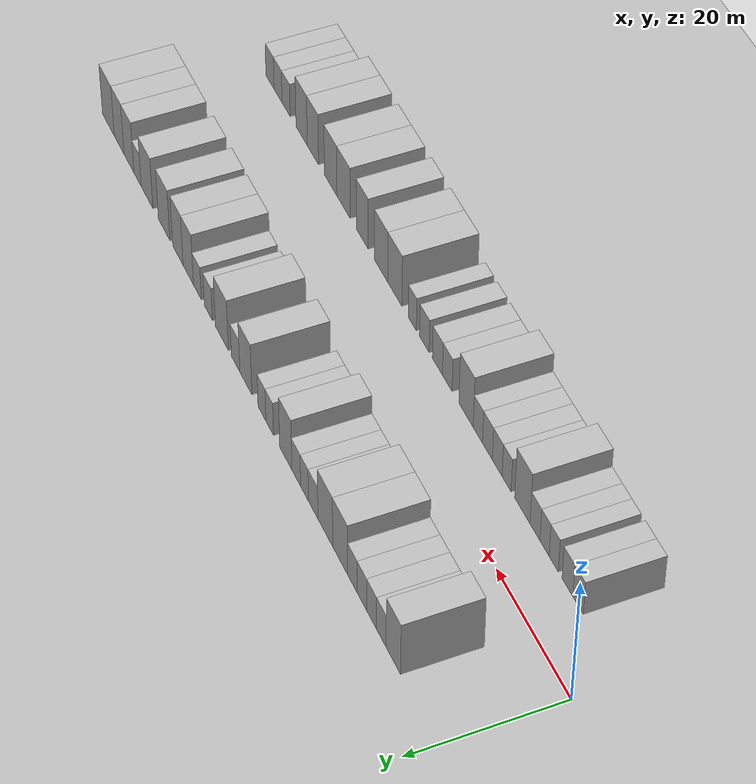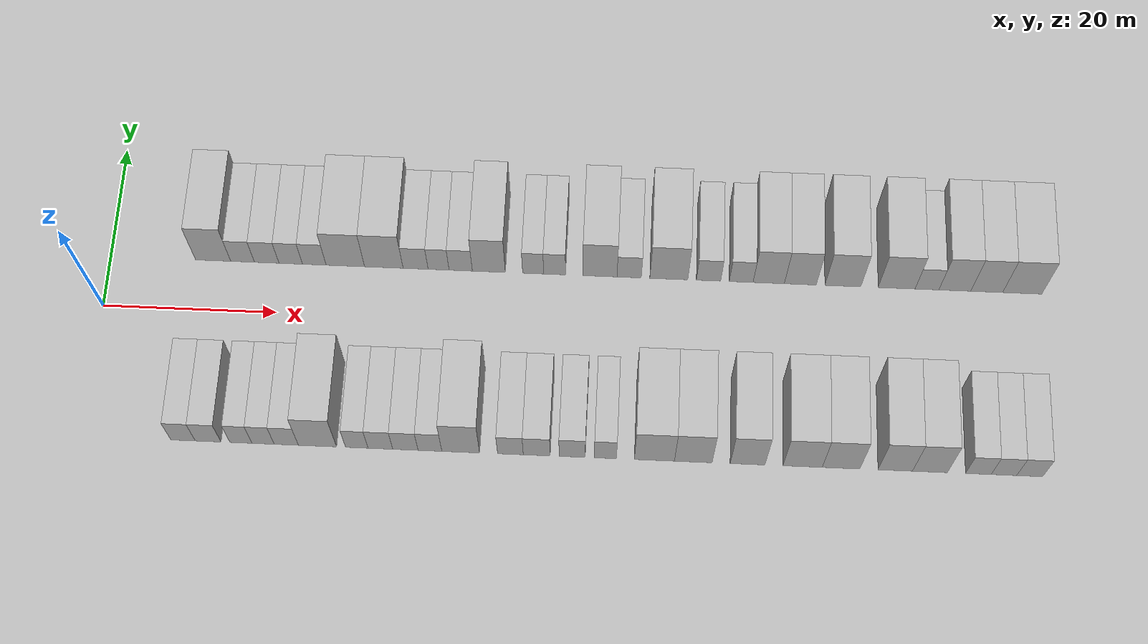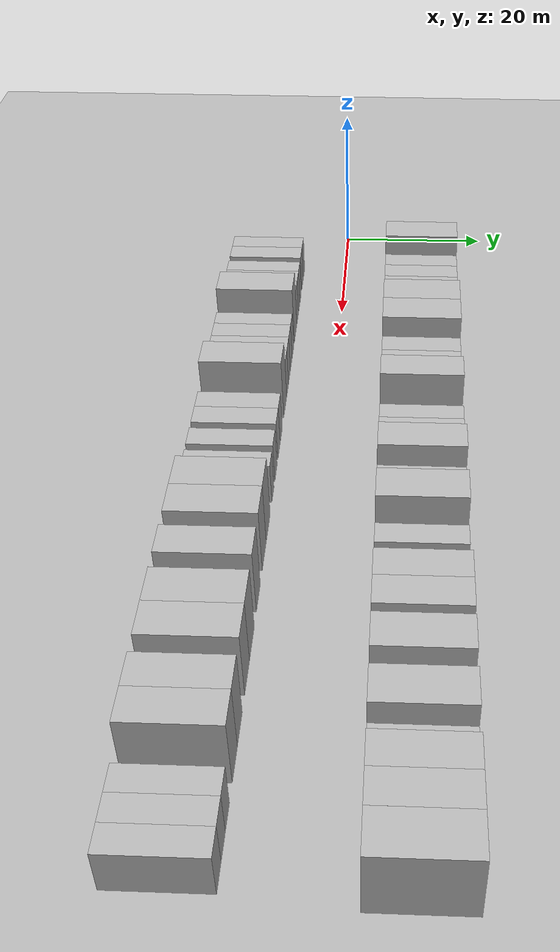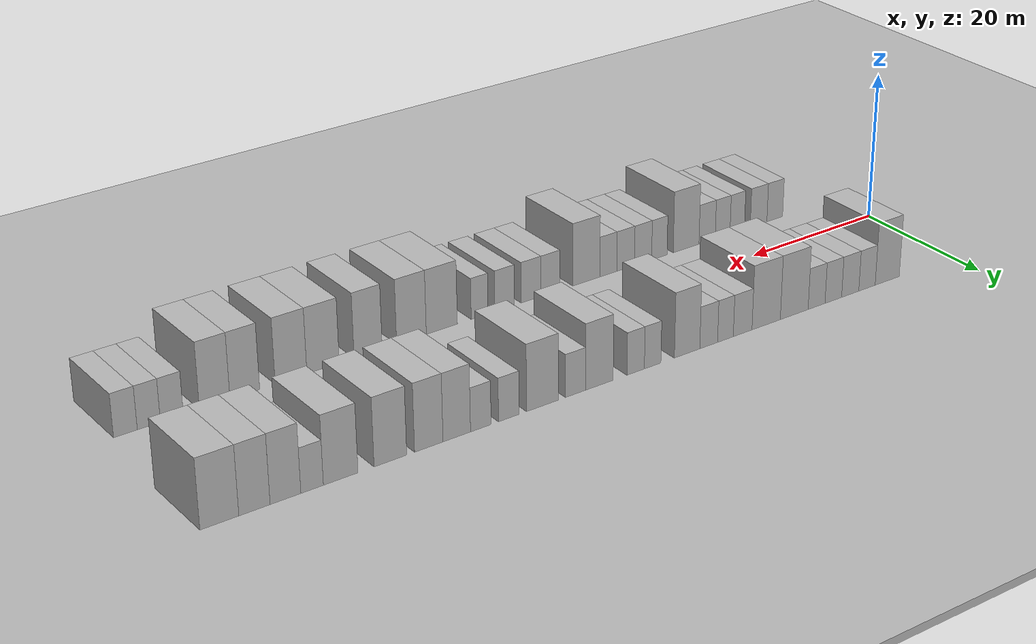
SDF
<sdf version="1.6">
 <world name="default">
  <include><name>ground_plane_1</name><uri>model://HANNAS_ground_plane</uri></include>
  <include>
   <name>ground_plane_2</name>
   <uri>model://HANNAS_ground_plane</uri>
   <pose>100 0 0  0 0 0</pose>
  </include>
  <model name="building_1">
   <static>1</static>
   <pose>12.0503 11.0000 0 0.000000 0.000000 1.570796</pose>
   <link name="link">
    <pose>0 0 4.50 0 0 0</pose>
    <collision name="collision"><geometry><box><size>10.0000 4.1006 9.0000</size></box></geometry></collision>
    <visual name="visual">
     <cast_shadows>0</cast_shadows>
     <geometry><box><size>10.0000 4.1006 9.0000</size></box></geometry>
     <material>
      <script>
       <uri>model://HANNAS_wall/materials/scripts</uri>
       <uri>model://HANNAS_wall/materials/textures</uri>
       <name>vrc/HANNAS_wall</name>
      </script>
     </material>
    </visual>
   </link>
  </model>
  <model name="building_2">
   <static>1</static>
   <pose>15.4799 11.0000 0 0.000000 0.000000 1.570796</pose>
   <link name="link">
    <pose>0 0 3.00 0 0 0</pose>
    <collision name="collision"><geometry><box><size>10.0000 2.7587 6.0000</size></box></geometry></collision>
    <visual name="visual">
     <cast_shadows>0</cast_shadows>
     <geometry><box><size>10.0000 2.7587 6.0000</size></box></geometry>
     <material>
      <script>
       <uri>model://HANNAS_wall/materials/scripts</uri>
       <uri>model://HANNAS_wall/materials/textures</uri>
       <name>vrc/HANNAS_wall</name>
      </script>
     </material>
    </visual>
   </link>
  </model>
  <model name="building_3">
   <static>1</static>
   <pose>18.2870 11.0000 0 0.000000 0.000000 1.570796</pose>
   <link name="link">
    <pose>0 0 3.00 0 0 0</pose>
    <collision name="collision"><geometry><box><size>10.0000 2.8556 6.0000</size></box></geometry></collision>
    <visual name="visual">
     <cast_shadows>0</cast_shadows>
     <geometry><box><size>10.0000 2.8556 6.0000</size></box></geometry>
     <material>
      <script>
       <uri>model://HANNAS_wall/materials/scripts</uri>
       <uri>model://HANNAS_wall/materials/textures</uri>
       <name>vrc/HANNAS_wall</name>
      </script>
     </material>
    </visual>
   </link>
  </model>
  <model name="building_4">
   <static>1</static>
   <pose>21.0823 11.0000 0 0.000000 0.000000 1.570796</pose>
   <link name="link">
    <pose>0 0 3.00 0 0 0</pose>
    <collision name="collision"><geometry><box><size>10.0000 2.7349 6.0000</size></box></geometry></collision>
    <visual name="visual">
     <cast_shadows>0</cast_shadows>
     <geometry><box><size>10.0000 2.7349 6.0000</size></box></geometry>
     <material>
      <script>
       <uri>model://HANNAS_wall/materials/scripts</uri>
       <uri>model://HANNAS_wall/materials/textures</uri>
       <name>vrc/HANNAS_wall</name>
      </script>
     </material>
    </visual>
   </link>
  </model>
  <model name="building_5">
   <static>1</static>
   <pose>23.8265 11.0000 0 0.000000 0.000000 1.570796</pose>
   <link name="link">
    <pose>0 0 3.00 0 0 0</pose>
    <collision name="collision"><geometry><box><size>10.0000 2.7537 6.0000</size></box></geometry></collision>
    <visual name="visual">
     <cast_shadows>0</cast_shadows>
     <geometry><box><size>10.0000 2.7537 6.0000</size></box></geometry>
     <material>
      <script>
       <uri>model://HANNAS_wall/materials/scripts</uri>
       <uri>model://HANNAS_wall/materials/textures</uri>
       <name>vrc/HANNAS_wall</name>
      </script>
     </material>
    </visual>
   </link>
  </model>
  <model name="building_6">
   <static>1</static>
   <pose>27.4386 11.0000 0 0.000000 0.000000 1.570796</pose>
   <link name="link">
    <pose>0 0 4.50 0 0 0</pose>
    <collision name="collision"><geometry><box><size>10.0000 4.4705 9.0000</size></box></geometry></collision>
    <visual name="visual">
     <cast_shadows>0</cast_shadows>
     <geometry><box><size>10.0000 4.4705 9.0000</size></box></geometry>
     <material>
      <script>
       <uri>model://HANNAS_wall/materials/scripts</uri>
       <uri>model://HANNAS_wall/materials/textures</uri>
       <name>vrc/HANNAS_wall</name>
      </script>
     </material>
    </visual>
   </link>
  </model>
  <model name="building_7">
   <static>1</static>
   <pose>31.9097 11.0000 0 0.000000 0.000000 1.570796</pose>
   <link name="link">
    <pose>0 0 4.50 0 0 0</pose>
    <collision name="collision"><geometry><box><size>10.0000 4.4717 9.0000</size></box></geometry></collision>
    <visual name="visual">
     <cast_shadows>0</cast_shadows>
     <geometry><box><size>10.0000 4.4717 9.0000</size></box></geometry>
     <material>
      <script>
       <uri>model://HANNAS_wall/materials/scripts</uri>
       <uri>model://HANNAS_wall/materials/textures</uri>
       <name>vrc/HANNAS_wall</name>
      </script>
     </material>
    </visual>
   </link>
  </model>
  <model name="building_8">
   <static>1</static>
   <pose>35.5978 11.0000 0 0.000000 0.000000 1.570796</pose>
   <link name="link">
    <pose>0 0 3.00 0 0 0</pose>
    <collision name="collision"><geometry><box><size>10.0000 2.9044 6.0000</size></box></geometry></collision>
    <visual name="visual">
     <cast_shadows>0</cast_shadows>
     <geometry><box><size>10.0000 2.9044 6.0000</size></box></geometry>
     <material>
      <script>
       <uri>model://HANNAS_wall/materials/scripts</uri>
       <uri>model://HANNAS_wall/materials/textures</uri>
       <name>vrc/HANNAS_wall</name>
      </script>
     </material>
    </visual>
   </link>
  </model>
  <model name="building_9">
   <static>1</static>
   <pose>38.2642 11.0000 0 0.000000 0.000000 1.570796</pose>
   <link name="link">
    <pose>0 0 3.00 0 0 0</pose>
    <collision name="collision"><geometry><box><size>10.0000 2.4285 6.0000</size></box></geometry></collision>
    <visual name="visual">
     <cast_shadows>0</cast_shadows>
     <geometry><box><size>10.0000 2.4285 6.0000</size></box></geometry>
     <material>
      <script>
       <uri>model://HANNAS_wall/materials/scripts</uri>
       <uri>model://HANNAS_wall/materials/textures</uri>
       <name>vrc/HANNAS_wall</name>
      </script>
     </material>
    </visual>
   </link>
  </model>
  <model name="building_10">
   <static>1</static>
   <pose>40.8345 11.0000 0 0.000000 0.000000 1.570796</pose>
   <link name="link">
    <pose>0 0 3.00 0 0 0</pose>
    <collision name="collision"><geometry><box><size>10.0000 2.7121 6.0000</size></box></geometry></collision>
    <visual name="visual">
     <cast_shadows>0</cast_shadows>
     <geometry><box><size>10.0000 2.7121 6.0000</size></box></geometry>
     <material>
      <script>
       <uri>model://HANNAS_wall/materials/scripts</uri>
       <uri>model://HANNAS_wall/materials/textures</uri>
       <name>vrc/HANNAS_wall</name>
      </script>
     </material>
    </visual>
   </link>
  </model>
  <model name="building_11">
   <static>1</static>
   <pose>44.0996 11.0000 0 0.000000 0.000000 1.570796</pose>
   <link name="link">
    <pose>0 0 4.50 0 0 0</pose>
    <collision name="collision"><geometry><box><size>10.0000 3.8181 9.0000</size></box></geometry></collision>
    <visual name="visual">
     <cast_shadows>0</cast_shadows>
     <geometry><box><size>10.0000 3.8181 9.0000</size></box></geometry>
     <material>
      <script>
       <uri>model://HANNAS_wall/materials/scripts</uri>
       <uri>model://HANNAS_wall/materials/textures</uri>
       <name>vrc/HANNAS_wall</name>
      </script>
     </material>
    </visual>
   </link>
  </model>
  <model name="building_12">
   <static>1</static>
   <pose>49.2258 11.0000 0 0.000000 0.000000 1.570796</pose>
   <link name="link">
    <pose>0 0 3.00 0 0 0</pose>
    <collision name="collision"><geometry><box><size>10.0000 2.4343 6.0000</size></box></geometry></collision>
    <visual name="visual">
     <cast_shadows>0</cast_shadows>
     <geometry><box><size>10.0000 2.4343 6.0000</size></box></geometry>
     <material>
      <script>
       <uri>model://HANNAS_wall/materials/scripts</uri>
       <uri>model://HANNAS_wall/materials/textures</uri>
       <name>vrc/HANNAS_wall</name>
      </script>
     </material>
    </visual>
   </link>
  </model>
  <model name="building_13">
   <static>1</static>
   <pose>51.7094 11.0000 0 0.000000 0.000000 1.570796</pose>
   <link name="link">
    <pose>0 0 3.00 0 0 0</pose>
    <collision name="collision"><geometry><box><size>10.0000 2.5329 6.0000</size></box></geometry></collision>
    <visual name="visual">
     <cast_shadows>0</cast_shadows>
     <geometry><box><size>10.0000 2.5329 6.0000</size></box></geometry>
     <material>
      <script>
       <uri>model://HANNAS_wall/materials/scripts</uri>
       <uri>model://HANNAS_wall/materials/textures</uri>
       <name>vrc/HANNAS_wall</name>
      </script>
     </material>
    </visual>
   </link>
  </model>
  <model name="building_14">
   <static>1</static>
   <pose>56.9545 11.0000 0 0.000000 0.000000 1.570796</pose>
   <link name="link">
    <pose>0 0 4.50 0 0 0</pose>
    <collision name="collision"><geometry><box><size>10.0000 3.9573 9.0000</size></box></geometry></collision>
    <visual name="visual">
     <cast_shadows>0</cast_shadows>
     <geometry><box><size>10.0000 3.9573 9.0000</size></box></geometry>
     <material>
      <script>
       <uri>model://HANNAS_wall/materials/scripts</uri>
       <uri>model://HANNAS_wall/materials/textures</uri>
       <name>vrc/HANNAS_wall</name>
      </script>
     </material>
    </visual>
   </link>
  </model>
  <model name="building_15">
   <static>1</static>
   <pose>60.3338 11.0000 0 0.000000 0.000000 1.570796</pose>
   <link name="link">
    <pose>0 0 3.00 0 0 0</pose>
    <collision name="collision"><geometry><box><size>10.0000 2.8012 6.0000</size></box></geometry></collision>
    <visual name="visual">
     <cast_shadows>0</cast_shadows>
     <geometry><box><size>10.0000 2.8012 6.0000</size></box></geometry>
     <material>
      <script>
       <uri>model://HANNAS_wall/materials/scripts</uri>
       <uri>model://HANNAS_wall/materials/textures</uri>
       <name>vrc/HANNAS_wall</name>
      </script>
     </material>
    </visual>
   </link>
  </model>
  <model name="building_16">
   <static>1</static>
   <pose>64.9238 11.0000 0 0.000000 0.000000 1.570796</pose>
   <link name="link">
    <pose>0 0 4.50 0 0 0</pose>
    <collision name="collision"><geometry><box><size>10.0000 4.3788 9.0000</size></box></geometry></collision>
    <visual name="visual">
     <cast_shadows>0</cast_shadows>
     <geometry><box><size>10.0000 4.3788 9.0000</size></box></geometry>
     <material>
      <script>
       <uri>model://HANNAS_wall/materials/scripts</uri>
       <uri>model://HANNAS_wall/materials/textures</uri>
       <name>vrc/HANNAS_wall</name>
      </script>
     </material>
    </visual>
   </link>
  </model>
  <model name="building_17">
   <static>1</static>
   <pose>69.5116 11.0000 0 0.000000 0.000000 1.570796</pose>
   <link name="link">
    <pose>0 0 3.00 0 0 0</pose>
    <collision name="collision"><geometry><box><size>10.0000 2.7969 6.0000</size></box></geometry></collision>
    <visual name="visual">
     <cast_shadows>0</cast_shadows>
     <geometry><box><size>10.0000 2.7969 6.0000</size></box></geometry>
     <material>
      <script>
       <uri>model://HANNAS_wall/materials/scripts</uri>
       <uri>model://HANNAS_wall/materials/textures</uri>
       <name>vrc/HANNAS_wall</name>
      </script>
     </material>
    </visual>
   </link>
  </model>
  <model name="building_18">
   <static>1</static>
   <pose>73.2801 11.0000 0 0.000000 0.000000 1.570796</pose>
   <link name="link">
    <pose>0 0 3.00 0 0 0</pose>
    <collision name="collision"><geometry><box><size>10.0000 2.7400 6.0000</size></box></geometry></collision>
    <visual name="visual">
     <cast_shadows>0</cast_shadows>
     <geometry><box><size>10.0000 2.7400 6.0000</size></box></geometry>
     <material>
      <script>
       <uri>model://HANNAS_wall/materials/scripts</uri>
       <uri>model://HANNAS_wall/materials/textures</uri>
       <name>vrc/HANNAS_wall</name>
      </script>
     </material>
    </visual>
   </link>
  </model>
  <model name="building_19">
   <static>1</static>
   <pose>76.4537 11.0000 0 0.000000 0.000000 1.570796</pose>
   <link name="link">
    <pose>0 0 4.50 0 0 0</pose>
    <collision name="collision"><geometry><box><size>10.0000 3.6072 9.0000</size></box></geometry></collision>
    <visual name="visual">
     <cast_shadows>0</cast_shadows>
     <geometry><box><size>10.0000 3.6072 9.0000</size></box></geometry>
     <material>
      <script>
       <uri>model://HANNAS_wall/materials/scripts</uri>
       <uri>model://HANNAS_wall/materials/textures</uri>
       <name>vrc/HANNAS_wall</name>
      </script>
     </material>
    </visual>
   </link>
  </model>
  <model name="building_20">
   <static>1</static>
   <pose>80.0972 11.0000 0 0.000000 0.000000 1.570796</pose>
   <link name="link">
    <pose>0 0 4.50 0 0 0</pose>
    <collision name="collision"><geometry><box><size>10.0000 3.6800 9.0000</size></box></geometry></collision>
    <visual name="visual">
     <cast_shadows>0</cast_shadows>
     <geometry><box><size>10.0000 3.6800 9.0000</size></box></geometry>
     <material>
      <script>
       <uri>model://HANNAS_wall/materials/scripts</uri>
       <uri>model://HANNAS_wall/materials/textures</uri>
       <name>vrc/HANNAS_wall</name>
      </script>
     </material>
    </visual>
   </link>
  </model>
  <model name="building_21">
   <static>1</static>
   <pose>85.0052 11.0000 0 0.000000 0.000000 1.570796</pose>
   <link name="link">
    <pose>0 0 4.50 0 0 0</pose>
    <collision name="collision"><geometry><box><size>10.0000 4.1361 9.0000</size></box></geometry></collision>
    <visual name="visual">
     <cast_shadows>0</cast_shadows>
     <geometry><box><size>10.0000 4.1361 9.0000</size></box></geometry>
     <material>
      <script>
       <uri>model://HANNAS_wall/materials/scripts</uri>
       <uri>model://HANNAS_wall/materials/textures</uri>
       <name>vrc/HANNAS_wall</name>
      </script>
     </material>
    </visual>
   </link>
  </model>
  <model name="building_22">
   <static>1</static>
   <pose>91.2013 11.0000 0 0.000000 0.000000 1.570796</pose>
   <link name="link">
    <pose>0 0 4.50 0 0 0</pose>
    <collision name="collision"><geometry><box><size>10.0000 4.2561 9.0000</size></box></geometry></collision>
    <visual name="visual">
     <cast_shadows>0</cast_shadows>
     <geometry><box><size>10.0000 4.2561 9.0000</size></box></geometry>
     <material>
      <script>
       <uri>model://HANNAS_wall/materials/scripts</uri>
       <uri>model://HANNAS_wall/materials/textures</uri>
       <name>vrc/HANNAS_wall</name>
      </script>
     </material>
    </visual>
   </link>
  </model>
  <model name="building_23">
   <static>1</static>
   <pose>94.6936 11.0000 0 0.000000 0.000000 1.570796</pose>
   <link name="link">
    <pose>0 0 3.00 0 0 0</pose>
    <collision name="collision"><geometry><box><size>10.0000 2.7285 6.0000</size></box></geometry></collision>
    <visual name="visual">
     <cast_shadows>0</cast_shadows>
     <geometry><box><size>10.0000 2.7285 6.0000</size></box></geometry>
     <material>
      <script>
       <uri>model://HANNAS_wall/materials/scripts</uri>
       <uri>model://HANNAS_wall/materials/textures</uri>
       <name>vrc/HANNAS_wall</name>
      </script>
     </material>
    </visual>
   </link>
  </model>
  <model name="building_24">
   <static>1</static>
   <pose>97.8919 11.0000 0 0.000000 0.000000 1.570796</pose>
   <link name="link">
    <pose>0 0 4.50 0 0 0</pose>
    <collision name="collision"><geometry><box><size>10.0000 3.6681 9.0000</size></box></geometry></collision>
    <visual name="visual">
     <cast_shadows>0</cast_shadows>
     <geometry><box><size>10.0000 3.6681 9.0000</size></box></geometry>
     <material>
      <script>
       <uri>model://HANNAS_wall/materials/scripts</uri>
       <uri>model://HANNAS_wall/materials/textures</uri>
       <name>vrc/HANNAS_wall</name>
      </script>
     </material>
    </visual>
   </link>
  </model>
  <model name="building_25">
   <static>1</static>
   <pose>101.5623 11.0000 0 0.000000 0.000000 1.570796</pose>
   <link name="link">
    <pose>0 0 4.50 0 0 0</pose>
    <collision name="collision"><geometry><box><size>10.0000 3.6725 9.0000</size></box></geometry></collision>
    <visual name="visual">
     <cast_shadows>0</cast_shadows>
     <geometry><box><size>10.0000 3.6725 9.0000</size></box></geometry>
     <material>
      <script>
       <uri>model://HANNAS_wall/materials/scripts</uri>
       <uri>model://HANNAS_wall/materials/textures</uri>
       <name>vrc/HANNAS_wall</name>
      </script>
     </material>
    </visual>
   </link>
  </model>
  <model name="building_26">
   <static>1</static>
   <pose>105.6455 11.0000 0 0.000000 0.000000 1.570796</pose>
   <link name="link">
    <pose>0 0 4.50 0 0 0</pose>
    <collision name="collision"><geometry><box><size>10.0000 4.4938 9.0000</size></box></geometry></collision>
    <visual name="visual">
     <cast_shadows>0</cast_shadows>
     <geometry><box><size>10.0000 4.4938 9.0000</size></box></geometry>
     <material>
      <script>
       <uri>model://HANNAS_wall/materials/scripts</uri>
       <uri>model://HANNAS_wall/materials/textures</uri>
       <name>vrc/HANNAS_wall</name>
      </script>
     </material>
    </visual>
   </link>
  </model>
  <model name="building_53">
   <static>1</static>
   <pose>11.3670 -11.0000 0 0.000000 0.000000 1.570796</pose>
   <link name="link">
    <pose>0 0 3.00 0 0 0</pose>
    <collision name="collision"><geometry><box><size>10.0000 2.7341 6.0000</size></box></geometry></collision>
    <visual name="visual">
     <cast_shadows>0</cast_shadows>
     <geometry><box><size>10.0000 2.7341 6.0000</size></box></geometry>
     <material>
      <script>
       <uri>model://HANNAS_wall/materials/scripts</uri>
       <uri>model://HANNAS_wall/materials/textures</uri>
       <name>vrc/HANNAS_wall</name>
      </script>
     </material>
    </visual>
   </link>
  </model>
  <model name="building_54">
   <static>1</static>
   <pose>14.1697 -11.0000 0 0.000000 0.000000 1.570796</pose>
   <link name="link">
    <pose>0 0 3.00 0 0 0</pose>
    <collision name="collision"><geometry><box><size>10.0000 2.8712 6.0000</size></box></geometry></collision>
    <visual name="visual">
     <cast_shadows>0</cast_shadows>
     <geometry><box><size>10.0000 2.8712 6.0000</size></box></geometry>
     <material>
      <script>
       <uri>model://HANNAS_wall/materials/scripts</uri>
       <uri>model://HANNAS_wall/materials/textures</uri>
       <name>vrc/HANNAS_wall</name>
      </script>
     </material>
    </visual>
   </link>
  </model>
  <model name="building_55">
   <static>1</static>
   <pose>17.8334 -11.0000 0 0.000000 0.000000 1.570796</pose>
   <link name="link">
    <pose>0 0 3.00 0 0 0</pose>
    <collision name="collision"><geometry><box><size>10.0000 2.4563 6.0000</size></box></geometry></collision>
    <visual name="visual">
     <cast_shadows>0</cast_shadows>
     <geometry><box><size>10.0000 2.4563 6.0000</size></box></geometry>
     <material>
      <script>
       <uri>model://HANNAS_wall/materials/scripts</uri>
       <uri>model://HANNAS_wall/materials/textures</uri>
       <name>vrc/HANNAS_wall</name>
      </script>
     </material>
    </visual>
   </link>
  </model>
  <model name="building_56">
   <static>1</static>
   <pose>20.3084 -11.0000 0 0.000000 0.000000 1.570796</pose>
   <link name="link">
    <pose>0 0 3.00 0 0 0</pose>
    <collision name="collision"><geometry><box><size>10.0000 2.4937 6.0000</size></box></geometry></collision>
    <visual name="visual">
     <cast_shadows>0</cast_shadows>
     <geometry><box><size>10.0000 2.4937 6.0000</size></box></geometry>
     <material>
      <script>
       <uri>model://HANNAS_wall/materials/scripts</uri>
       <uri>model://HANNAS_wall/materials/textures</uri>
       <name>vrc/HANNAS_wall</name>
      </script>
     </material>
    </visual>
   </link>
  </model>
  <model name="building_57">
   <static>1</static>
   <pose>22.9061 -11.0000 0 0.000000 0.000000 1.570796</pose>
   <link name="link">
    <pose>0 0 3.00 0 0 0</pose>
    <collision name="collision"><geometry><box><size>10.0000 2.7017 6.0000</size></box></geometry></collision>
    <visual name="visual">
     <cast_shadows>0</cast_shadows>
     <geometry><box><size>10.0000 2.7017 6.0000</size></box></geometry>
     <material>
      <script>
       <uri>model://HANNAS_wall/materials/scripts</uri>
       <uri>model://HANNAS_wall/materials/textures</uri>
       <name>vrc/HANNAS_wall</name>
      </script>
     </material>
    </visual>
   </link>
  </model>
  <model name="building_58">
   <static>1</static>
   <pose>26.3835 -11.0000 0 0.000000 0.000000 1.570796</pose>
   <link name="link">
    <pose>0 0 4.50 0 0 0</pose>
    <collision name="collision"><geometry><box><size>10.0000 4.2531 9.0000</size></box></geometry></collision>
    <visual name="visual">
     <cast_shadows>0</cast_shadows>
     <geometry><box><size>10.0000 4.2531 9.0000</size></box></geometry>
     <material>
      <script>
       <uri>model://HANNAS_wall/materials/scripts</uri>
       <uri>model://HANNAS_wall/materials/textures</uri>
       <name>vrc/HANNAS_wall</name>
      </script>
     </material>
    </visual>
   </link>
  </model>
  <model name="building_59">
   <static>1</static>
   <pose>30.7619 -11.0000 0 0.000000 0.000000 1.570796</pose>
   <link name="link">
    <pose>0 0 3.00 0 0 0</pose>
    <collision name="collision"><geometry><box><size>10.0000 2.5038 6.0000</size></box></geometry></collision>
    <visual name="visual">
     <cast_shadows>0</cast_shadows>
     <geometry><box><size>10.0000 2.5038 6.0000</size></box></geometry>
     <material>
      <script>
       <uri>model://HANNAS_wall/materials/scripts</uri>
       <uri>model://HANNAS_wall/materials/textures</uri>
       <name>vrc/HANNAS_wall</name>
      </script>
     </material>
    </visual>
   </link>
  </model>
  <model name="building_60">
   <static>1</static>
   <pose>33.3915 -11.0000 0 0.000000 0.000000 1.570796</pose>
   <link name="link">
    <pose>0 0 3.00 0 0 0</pose>
    <collision name="collision"><geometry><box><size>10.0000 2.7554 6.0000</size></box></geometry></collision>
    <visual name="visual">
     <cast_shadows>0</cast_shadows>
     <geometry><box><size>10.0000 2.7554 6.0000</size></box></geometry>
     <material>
      <script>
       <uri>model://HANNAS_wall/materials/scripts</uri>
       <uri>model://HANNAS_wall/materials/textures</uri>
       <name>vrc/HANNAS_wall</name>
      </script>
     </material>
    </visual>
   </link>
  </model>
  <model name="building_61">
   <static>1</static>
   <pose>36.1801 -11.0000 0 0.000000 0.000000 1.570796</pose>
   <link name="link">
    <pose>0 0 3.00 0 0 0</pose>
    <collision name="collision"><geometry><box><size>10.0000 2.8218 6.0000</size></box></geometry></collision>
    <visual name="visual">
     <cast_shadows>0</cast_shadows>
     <geometry><box><size>10.0000 2.8218 6.0000</size></box></geometry>
     <material>
      <script>
       <uri>model://HANNAS_wall/materials/scripts</uri>
       <uri>model://HANNAS_wall/materials/textures</uri>
       <name>vrc/HANNAS_wall</name>
      </script>
     </material>
    </visual>
   </link>
  </model>
  <model name="building_62">
   <static>1</static>
   <pose>38.9172 -11.0000 0 0.000000 0.000000 1.570796</pose>
   <link name="link">
    <pose>0 0 3.00 0 0 0</pose>
    <collision name="collision"><geometry><box><size>10.0000 2.6525 6.0000</size></box></geometry></collision>
    <visual name="visual">
     <cast_shadows>0</cast_shadows>
     <geometry><box><size>10.0000 2.6525 6.0000</size></box></geometry>
     <material>
      <script>
       <uri>model://HANNAS_wall/materials/scripts</uri>
       <uri>model://HANNAS_wall/materials/textures</uri>
       <name>vrc/HANNAS_wall</name>
      </script>
     </material>
    </visual>
   </link>
  </model>
  <model name="building_63">
   <static>1</static>
   <pose>42.3424 -11.0000 0 0.000000 0.000000 1.570796</pose>
   <link name="link">
    <pose>0 0 4.50 0 0 0</pose>
    <collision name="collision"><geometry><box><size>10.0000 4.1980 9.0000</size></box></geometry></collision>
    <visual name="visual">
     <cast_shadows>0</cast_shadows>
     <geometry><box><size>10.0000 4.1980 9.0000</size></box></geometry>
     <material>
      <script>
       <uri>model://HANNAS_wall/materials/scripts</uri>
       <uri>model://HANNAS_wall/materials/textures</uri>
       <name>vrc/HANNAS_wall</name>
      </script>
     </material>
    </visual>
   </link>
  </model>
  <model name="building_64">
   <static>1</static>
   <pose>47.8683 -11.0000 0 0.000000 0.000000 1.570796</pose>
   <link name="link">
    <pose>0 0 3.00 0 0 0</pose>
    <collision name="collision"><geometry><box><size>10.0000 2.8538 6.0000</size></box></geometry></collision>
    <visual name="visual">
     <cast_shadows>0</cast_shadows>
     <geometry><box><size>10.0000 2.8538 6.0000</size></box></geometry>
     <material>
      <script>
       <uri>model://HANNAS_wall/materials/scripts</uri>
       <uri>model://HANNAS_wall/materials/textures</uri>
       <name>vrc/HANNAS_wall</name>
      </script>
     </material>
    </visual>
   </link>
  </model>
  <model name="building_65">
   <static>1</static>
   <pose>50.7900 -11.0000 0 0.000000 0.000000 1.570796</pose>
   <link name="link">
    <pose>0 0 3.00 0 0 0</pose>
    <collision name="collision"><geometry><box><size>10.0000 2.9897 6.0000</size></box></geometry></collision>
    <visual name="visual">
     <cast_shadows>0</cast_shadows>
     <geometry><box><size>10.0000 2.9897 6.0000</size></box></geometry>
     <material>
      <script>
       <uri>model://HANNAS_wall/materials/scripts</uri>
       <uri>model://HANNAS_wall/materials/textures</uri>
       <name>vrc/HANNAS_wall</name>
      </script>
     </material>
    </visual>
   </link>
  </model>
  <model name="building_66">
   <static>1</static>
   <pose>54.7320 -11.0000 0 0.000000 0.000000 1.570796</pose>
   <link name="link">
    <pose>0 0 3.00 0 0 0</pose>
    <collision name="collision"><geometry><box><size>10.0000 2.8942 6.0000</size></box></geometry></collision>
    <visual name="visual">
     <cast_shadows>0</cast_shadows>
     <geometry><box><size>10.0000 2.8942 6.0000</size></box></geometry>
     <material>
      <script>
       <uri>model://HANNAS_wall/materials/scripts</uri>
       <uri>model://HANNAS_wall/materials/textures</uri>
       <name>vrc/HANNAS_wall</name>
      </script>
     </material>
    </visual>
   </link>
  </model>
  <model name="building_67">
   <static>1</static>
   <pose>58.4090 -11.0000 0 0.000000 0.000000 1.570796</pose>
   <link name="link">
    <pose>0 0 3.00 0 0 0</pose>
    <collision name="collision"><geometry><box><size>10.0000 2.4599 6.0000</size></box></geometry></collision>
    <visual name="visual">
     <cast_shadows>0</cast_shadows>
     <geometry><box><size>10.0000 2.4599 6.0000</size></box></geometry>
     <material>
      <script>
       <uri>model://HANNAS_wall/materials/scripts</uri>
       <uri>model://HANNAS_wall/materials/textures</uri>
       <name>vrc/HANNAS_wall</name>
      </script>
     </material>
    </visual>
   </link>
  </model>
  <model name="building_68">
   <static>1</static>
   <pose>63.8592 -11.0000 0 0.000000 0.000000 1.570796</pose>
   <link name="link">
    <pose>0 0 4.50 0 0 0</pose>
    <collision name="collision"><geometry><box><size>10.0000 4.4405 9.0000</size></box></geometry></collision>
    <visual name="visual">
     <cast_shadows>0</cast_shadows>
     <geometry><box><size>10.0000 4.4405 9.0000</size></box></geometry>
     <material>
      <script>
       <uri>model://HANNAS_wall/materials/scripts</uri>
       <uri>model://HANNAS_wall/materials/textures</uri>
       <name>vrc/HANNAS_wall</name>
      </script>
     </material>
    </visual>
   </link>
  </model>
  <model name="building_69">
   <static>1</static>
   <pose>68.1646 -11.0000 0 0.000000 0.000000 1.570796</pose>
   <link name="link">
    <pose>0 0 4.50 0 0 0</pose>
    <collision name="collision"><geometry><box><size>10.0000 4.1702 9.0000</size></box></geometry></collision>
    <visual name="visual">
     <cast_shadows>0</cast_shadows>
     <geometry><box><size>10.0000 4.1702 9.0000</size></box></geometry>
     <material>
      <script>
       <uri>model://HANNAS_wall/materials/scripts</uri>
       <uri>model://HANNAS_wall/materials/textures</uri>
       <name>vrc/HANNAS_wall</name>
      </script>
     </material>
    </visual>
   </link>
  </model>
  <model name="building_70">
   <static>1</static>
   <pose>74.1754 -11.0000 0 0.000000 0.000000 1.570796</pose>
   <link name="link">
    <pose>0 0 4.50 0 0 0</pose>
    <collision name="collision"><geometry><box><size>10.0000 3.8515 9.0000</size></box></geometry></collision>
    <visual name="visual">
     <cast_shadows>0</cast_shadows>
     <geometry><box><size>10.0000 3.8515 9.0000</size></box></geometry>
     <material>
      <script>
       <uri>model://HANNAS_wall/materials/scripts</uri>
       <uri>model://HANNAS_wall/materials/textures</uri>
       <name>vrc/HANNAS_wall</name>
      </script>
     </material>
    </visual>
   </link>
  </model>
  <model name="building_71">
   <static>1</static>
   <pose>80.2656 -11.0000 0 0.000000 0.000000 1.570796</pose>
   <link name="link">
    <pose>0 0 4.50 0 0 0</pose>
    <collision name="collision"><geometry><box><size>10.0000 4.3288 9.0000</size></box></geometry></collision>
    <visual name="visual">
     <cast_shadows>0</cast_shadows>
     <geometry><box><size>10.0000 4.3288 9.0000</size></box></geometry>
     <material>
      <script>
       <uri>model://HANNAS_wall/materials/scripts</uri>
       <uri>model://HANNAS_wall/materials/textures</uri>
       <name>vrc/HANNAS_wall</name>
      </script>
     </material>
    </visual>
   </link>
  </model>
  <model name="building_72">
   <static>1</static>
   <pose>84.5153 -11.0000 0 0.000000 0.000000 1.570796</pose>
   <link name="link">
    <pose>0 0 4.50 0 0 0</pose>
    <collision name="collision"><geometry><box><size>10.0000 4.1707 9.0000</size></box></geometry></collision>
    <visual name="visual">
     <cast_shadows>0</cast_shadows>
     <geometry><box><size>10.0000 4.1707 9.0000</size></box></geometry>
     <material>
      <script>
       <uri>model://HANNAS_wall/materials/scripts</uri>
       <uri>model://HANNAS_wall/materials/textures</uri>
       <name>vrc/HANNAS_wall</name>
      </script>
     </material>
    </visual>
   </link>
  </model>
  <model name="building_73">
   <static>1</static>
   <pose>90.5065 -11.0000 0 0.000000 0.000000 1.570796</pose>
   <link name="link">
    <pose>0 0 4.50 0 0 0</pose>
    <collision name="collision"><geometry><box><size>10.0000 3.8116 9.0000</size></box></geometry></collision>
    <visual name="visual">
     <cast_shadows>0</cast_shadows>
     <geometry><box><size>10.0000 3.8116 9.0000</size></box></geometry>
     <material>
      <script>
       <uri>model://HANNAS_wall/materials/scripts</uri>
       <uri>model://HANNAS_wall/materials/textures</uri>
       <name>vrc/HANNAS_wall</name>
      </script>
     </material>
    </visual>
   </link>
  </model>
  <model name="building_74">
   <static>1</static>
   <pose>94.3385 -11.0000 0 0.000000 0.000000 1.570796</pose>
   <link name="link">
    <pose>0 0 4.50 0 0 0</pose>
    <collision name="collision"><geometry><box><size>10.0000 3.8525 9.0000</size></box></geometry></collision>
    <visual name="visual">
     <cast_shadows>0</cast_shadows>
     <geometry><box><size>10.0000 3.8525 9.0000</size></box></geometry>
     <material>
      <script>
       <uri>model://HANNAS_wall/materials/scripts</uri>
       <uri>model://HANNAS_wall/materials/textures</uri>
       <name>vrc/HANNAS_wall</name>
      </script>
     </material>
    </visual>
   </link>
  </model>
  <model name="building_75">
   <static>1</static>
   <pose>99.6766 -11.0000 0 0.000000 0.000000 1.570796</pose>
   <link name="link">
    <pose>0 0 3.00 0 0 0</pose>
    <collision name="collision"><geometry><box><size>10.0000 2.8236 6.0000</size></box></geometry></collision>
    <visual name="visual">
     <cast_shadows>0</cast_shadows>
     <geometry><box><size>10.0000 2.8236 6.0000</size></box></geometry>
     <material>
      <script>
       <uri>model://HANNAS_wall/materials/scripts</uri>
       <uri>model://HANNAS_wall/materials/textures</uri>
       <name>vrc/HANNAS_wall</name>
      </script>
     </material>
    </visual>
   </link>
  </model>
  <model name="building_76">
   <static>1</static>
   <pose>102.4961 -11.0000 0 0.000000 0.000000 1.570796</pose>
   <link name="link">
    <pose>0 0 3.00 0 0 0</pose>
    <collision name="collision"><geometry><box><size>10.0000 2.8155 6.0000</size></box></geometry></collision>
    <visual name="visual">
     <cast_shadows>0</cast_shadows>
     <geometry><box><size>10.0000 2.8155 6.0000</size></box></geometry>
     <material>
      <script>
       <uri>model://HANNAS_wall/materials/scripts</uri>
       <uri>model://HANNAS_wall/materials/textures</uri>
       <name>vrc/HANNAS_wall</name>
      </script>
     </material>
    </visual>
   </link>
  </model>
  <model name="building_77">
   <static>1</static>
   <pose>105.3372 -11.0000 0 0.000000 0.000000 1.570796</pose>
   <link name="link">
    <pose>0 0 3.00 0 0 0</pose>
    <collision name="collision"><geometry><box><size>10.0000 2.8666 6.0000</size></box></geometry></collision>
    <visual name="visual">
     <cast_shadows>0</cast_shadows>
     <geometry><box><size>10.0000 2.8666 6.0000</size></box></geometry>
     <material>
      <script>
       <uri>model://HANNAS_wall/materials/scripts</uri>
       <uri>model://HANNAS_wall/materials/textures</uri>
       <name>vrc/HANNAS_wall</name>
      </script>
     </material>
    </visual>
   </link>
  </model>
 </world>
</sdf>
